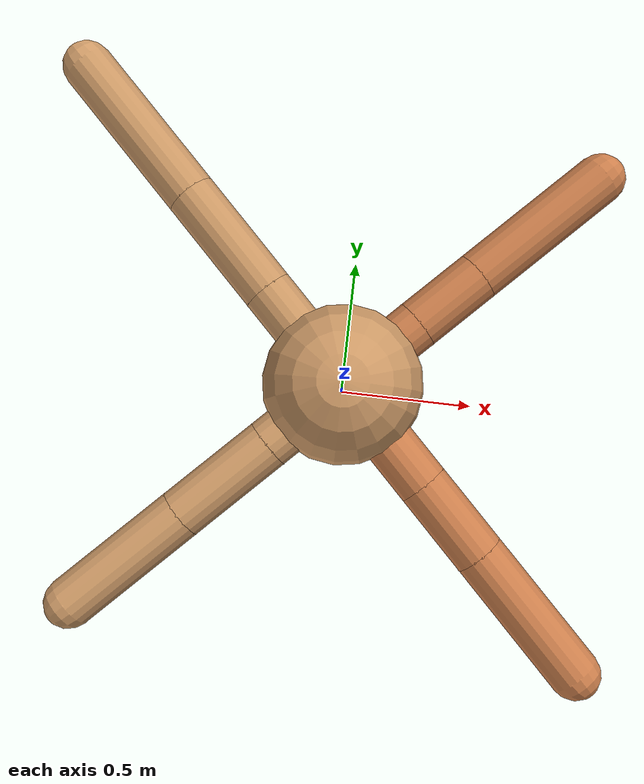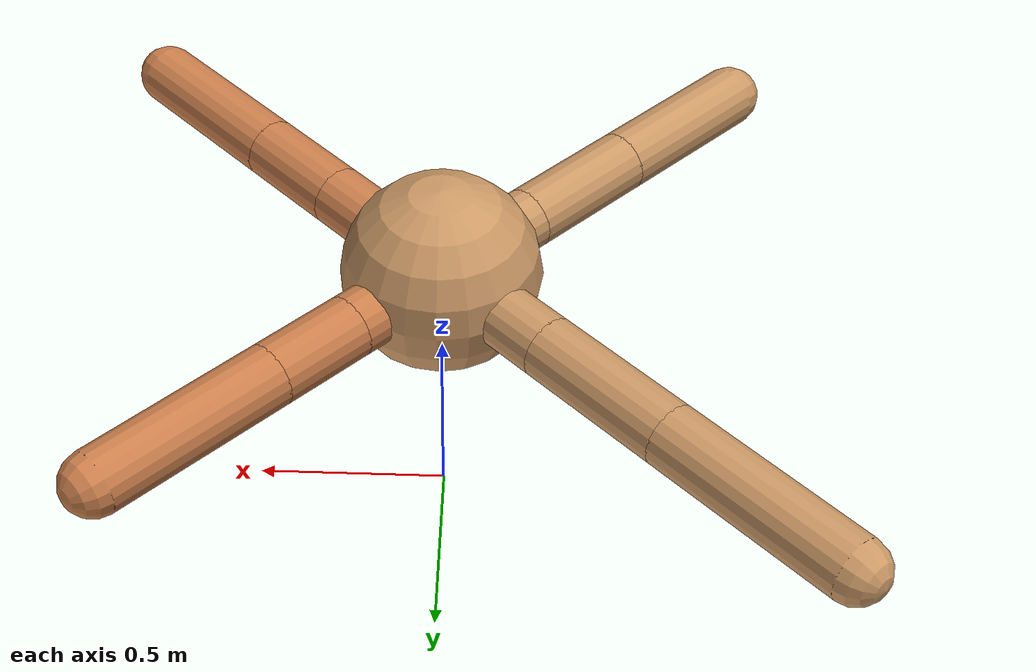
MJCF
<mujoco model="ant">
  <compiler angle="degree" coordinate="local" inertiafromgeom="true" />
  <option integrator="RK4" timestep="0.01" />
  <custom>
    <numeric data="0.0 0.0 0.55 1.0 0.0 0.0 0.0 0.0 1.0 0.0 -1.0 0.0 -1.0 0.0 1.0" name="init_qpos" />
  </custom>
  <default>
    <joint armature="1" damping="1" limited="true" />
    <geom conaffinity="0" condim="3" density="5.0" friction="1.5 0.1 0.1" margin="0.01" rgba="0.8 0.6 0.4 1" />
  </default>
  <worldbody>
    <body name="torso" pos="0 0 0.75">
      <geom name="torso_geom" pos="0 0 0" size="0.25" type="sphere" />

      <body name="front_left_leg" pos="0 0 0">
        <geom fromto="0.0 0.0 0.0 0.20851004319002647 0.20851004319002647 0.0" name="aux_1_geom" size="0.08" type="capsule" rgba=".8 .5 .3 1" />
        <body name="aux_1" pos="0.20851004319002647 0.20851004319002647 0.0">
          <joint axis="0 0 1" name="hip_1" pos="0.0 0.0 0.0" range="-40 40" type="hinge" />
          <geom fromto="0.0 0.0 0.0 0.16938989634273027 0.16938989634273027 0.0" name="left_leg_geom" size="0.08" type="capsule" rgba=".8 .5 .3 1" />
          <body pos="0.16938989634273027 0.16938989634273027 0.0" name="front_left_foot">
            <joint axis="-1 1 0" name="ankle_1" pos="0.0 0.0 0.0" range="30 100" type="hinge" />
            <geom fromto="0.0 0.0 0.0 0.3482921136011452 0.3482921136011452 0.0" name="left_ankle_geom" size="0.08" type="capsule" rgba=".8 .5 .3 1" />
          </body>
        </body>
      </body>
      <body name="front_right_leg" pos="0 0 0">
        <geom fromto="0.0 0.0 0.0 -0.2629856183379322 0.2629856183379322 0.0" name="aux_2_geom" size="0.08" type="capsule" />
        <body name="aux_2" pos="-0.2629856183379322 0.2629856183379322 0.0">
          <joint axis="0 0 1" name="hip_2" pos="0.0 0.0 0.0" range="-40 40" type="hinge" />
          <geom fromto="0.0 0.0 0.0 -0.27183822288958753 0.27183822288958753 0.0" name="right_leg_geom" size="0.08" type="capsule" />
          <body pos="-0.27183822288958753 0.27183822288958753 0.0" name="front_right_foot">
            <joint axis="1 1 0" name="ankle_2" pos="0.0 0.0 0.0" range="-100 -30" type="hinge" />
            <geom fromto="0.0 0.0 0.0 -0.37155428245506944 0.37155428245506944 0.0" name="right_ankle_geom" size="0.08" type="capsule" />
          </body>
        </body>
      </body>
      <body name="left_back_leg" pos="0 0 0">
        <geom fromto="0.0 0.0 0.0 -0.20824756855794063 -0.20824756855794063 0.0" name="aux_3_geom" size="0.08" type="capsule" />
        <body name="aux_3" pos="-0.20824756855794063 -0.20824756855794063 0.0">
          <joint axis="0 0 1" name="hip_3" pos="0.0 0.0 0.0" range="-40 40" type="hinge" />
          <geom fromto="0.0 0.0 0.0 -0.240188897012787 -0.240188897012787 0.0" name="back_leg_geom" size="0.08" type="capsule" />
          <body pos="-0.240188897012787 -0.240188897012787 0.0" name="left_back_foot">
            <joint axis="-1 1 0" name="ankle_3" pos="0.0 0.0 0.0" range="-100 -30" type="hinge" />
            <geom fromto="0.0 0.0 0.0 -0.30174462970925037 -0.30174462970925037 0.0" name="third_ankle_geom" size="0.08" type="capsule" />
          </body>
        </body>
      </body>
      <body name="right_back_leg" pos="0 0 0">
        <geom fromto="0.0 0.0 0.0 0.2776431980970477 -0.2776431980970477 0.0" name="aux_4_geom" size="0.08" type="capsule" rgba=".8 .5 .3 1" />
        <body name="aux_4" pos="0.2776431980970477 -0.2776431980970477 0.0">
          <joint axis="0 0 1" name="hip_4" pos="0.0 0.0 0.0" range="-40 40" type="hinge" />
          <geom fromto="0.0 0.0 0.0 0.1918120421727143 -0.1918120421727143 0.0" name="rightback_leg_geom" size="0.08" type="capsule" rgba=".8 .5 .3 1" />
          <body pos="0.1918120421727143 -0.1918120421727143 0.0" name="right_back_foot">
            <joint axis="1 1 0" name="ankle_4" pos="0.0 0.0 0.0" range="30 100" type="hinge" />
            <geom fromto="0.0 0.0 0.0 0.3230177758375786 -0.3230177758375786 0.0" name="fourth_ankle_geom" size="0.08" type="capsule" rgba=".8 .5 .3 1" />
          </body>
        </body>
      </body>
    </body>
  </worldbody>
  <actuator>
    <motor ctrllimited="true" ctrlrange="-1.0 1.0" joint="hip_4" gear="150" />
    <motor ctrllimited="true" ctrlrange="-1.0 1.0" joint="ankle_4" gear="150" />
    <motor ctrllimited="true" ctrlrange="-1.0 1.0" joint="hip_1" gear="150" />
    <motor ctrllimited="true" ctrlrange="-1.0 1.0" joint="ankle_1" gear="150" />
    <motor ctrllimited="true" ctrlrange="-1.0 1.0" joint="hip_2" gear="150" />
    <motor ctrllimited="true" ctrlrange="-1.0 1.0" joint="ankle_2" gear="150" />
    <motor ctrllimited="true" ctrlrange="-1.0 1.0" joint="hip_3" gear="150" />
    <motor ctrllimited="true" ctrlrange="-1.0 1.0" joint="ankle_3" gear="150" />
  </actuator>
</mujoco>
